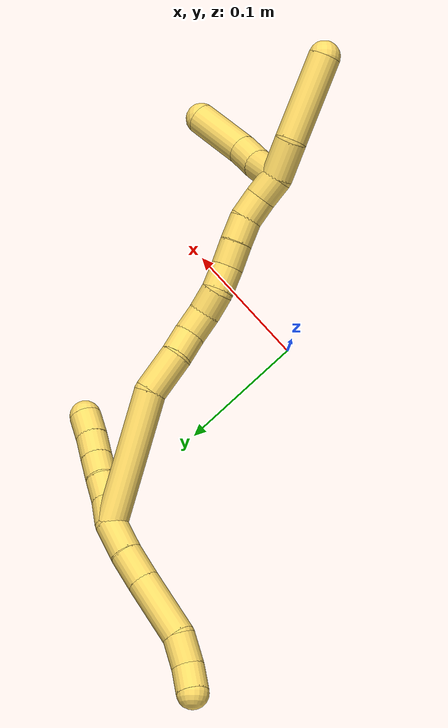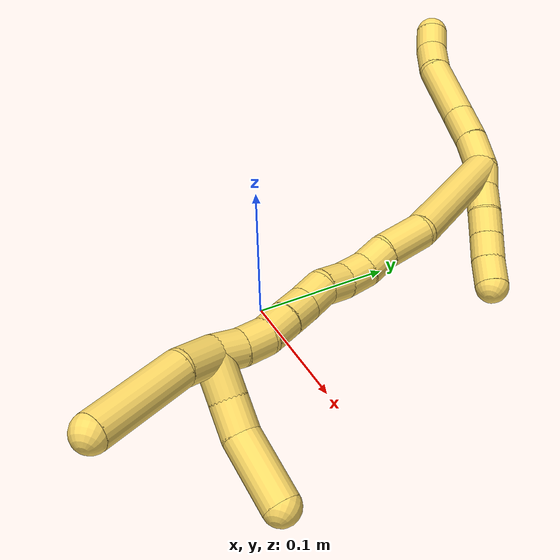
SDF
<sdf version="1.7">
 <world name="default">
  <model name="5">
   <static>0</static>
   <link name="5">
    <collision name="collision-cylinder-e_1_2_8">
     <pose>0.000745 -0.006176 0.012211 0.468232 0.054392 0.012975</pose>
     <geometry><cylinder><radius>0.0125</radius><length>0.027409</length></cylinder></geometry>
     <surface>
      <friction><ode><mu>1.16</mu><mu2>1.16</mu2><slip1>0</slip1><slip2>0</slip2></ode></friction>
      <contact><ode><kp>1e+06</kp><kd>1</kd><max_vel>0</max_vel><min_depth>0.001</min_depth></ode></contact>
     </surface>
    </collision>
    <visual name="visual-cylinder-e_1_2_8">
     <pose>0.000745 -0.006176 0.012211 0.468232 0.054392 0.012975</pose>
     <geometry><cylinder><radius>0.0125</radius><length>0.027409</length></cylinder></geometry>
     <material><ambient>1 0.858824 0.4 1</ambient></material>
    </visual>
    <collision name="collision-cylinder-e_2_8_9">
     <pose>0.001329 -0.019156 0.035711 0.542488 -0.012224 -0.0034</pose>
     <geometry><cylinder><radius>0.0125</radius><length>0.026363</length></cylinder></geometry>
     <surface>
      <friction><ode><mu>1.16</mu><mu2>1.16</mu2><slip1>0</slip1><slip2>0</slip2></ode></friction>
      <contact><ode><kp>1e+06</kp><kd>1</kd><max_vel>0</max_vel><min_depth>0.001</min_depth></ode></contact>
     </surface>
    </collision>
    <visual name="visual-cylinder-e_2_8_9">
     <pose>0.001329 -0.019156 0.035711 0.542488 -0.012224 -0.0034</pose>
     <geometry><cylinder><radius>0.0125</radius><length>0.026363</length></cylinder></geometry>
     <material><ambient>1 0.858824 0.4 1</ambient></material>
    </visual>
    <collision name="collision-cylinder-e_3_9_10">
     <pose>0.001737 -0.039712 0.068561 0.5677 0.022242 0.006489</pose>
     <geometry><cylinder><radius>0.0125</radius><length>0.05116</length></cylinder></geometry>
     <surface>
      <friction><ode><mu>1.16</mu><mu2>1.16</mu2><slip1>0</slip1><slip2>0</slip2></ode></friction>
      <contact><ode><kp>1e+06</kp><kd>1</kd><max_vel>0</max_vel><min_depth>0.001</min_depth></ode></contact>
     </surface>
    </collision>
    <visual name="visual-cylinder-e_3_9_10">
     <pose>0.001737 -0.039712 0.068561 0.5677 0.022242 0.006489</pose>
     <geometry><cylinder><radius>0.0125</radius><length>0.05116</length></cylinder></geometry>
     <material><ambient>1 0.858824 0.4 1</ambient></material>
    </visual>
    <collision name="collision-cylinder-e_4_10_11">
     <pose>0.0015 -0.056808 0.101817 0.278675 -0.066166 -0.009283</pose>
     <geometry><cylinder><radius>0.0125</radius><length>0.024378</length></cylinder></geometry>
     <surface>
      <friction><ode><mu>1.16</mu><mu2>1.16</mu2><slip1>0</slip1><slip2>0</slip2></ode></friction>
      <contact><ode><kp>1e+06</kp><kd>1</kd><max_vel>0</max_vel><min_depth>0.001</min_depth></ode></contact>
     </surface>
    </collision>
    <visual name="visual-cylinder-e_4_10_11">
     <pose>0.0015 -0.056808 0.101817 0.278675 -0.066166 -0.009283</pose>
     <geometry><cylinder><radius>0.0125</radius><length>0.024378</length></cylinder></geometry>
     <material><ambient>1 0.858824 0.4 1</ambient></material>
    </visual>
    <collision name="collision-cylinder-e_5_11_6">
     <pose>0.002114 -0.06224 0.123542 0.204971 0.137679 0.014182</pose>
     <geometry><cylinder><radius>0.0125</radius><length>0.02069</length></cylinder></geometry>
     <surface>
      <friction><ode><mu>1.16</mu><mu2>1.16</mu2><slip1>0</slip1><slip2>0</slip2></ode></friction>
      <contact><ode><kp>1e+06</kp><kd>1</kd><max_vel>0</max_vel><min_depth>0.001</min_depth></ode></contact>
     </surface>
    </collision>
    <visual name="visual-cylinder-e_5_11_6">
     <pose>0.002114 -0.06224 0.123542 0.204971 0.137679 0.014182</pose>
     <geometry><cylinder><radius>0.0125</radius><length>0.02069</length></cylinder></geometry>
     <material><ambient>1 0.858824 0.4 1</ambient></material>
    </visual>
    <collision name="collision-cylinder-e_1_2_12">
     <pose>-0.001535 0.001833 -0.00971 -2.95504 -0.154108 1.37998</pose>
     <geometry><cylinder><radius>0.0125</radius><length>0.02</length></cylinder></geometry>
     <surface>
      <friction><ode><mu>1.16</mu><mu2>1.16</mu2><slip1>0</slip1><slip2>0</slip2></ode></friction>
      <contact><ode><kp>1e+06</kp><kd>1</kd><max_vel>0</max_vel><min_depth>0.001</min_depth></ode></contact>
     </surface>
    </collision>
    <visual name="visual-cylinder-e_1_2_12">
     <pose>-0.001535 0.001833 -0.00971 -2.95504 -0.154108 1.37998</pose>
     <geometry><cylinder><radius>0.0125</radius><length>0.02</length></cylinder></geometry>
     <material><ambient>1 0.858824 0.4 1</ambient></material>
    </visual>
    <collision name="collision-cylinder-e_2_12_13">
     <pose>-0.004665 0.006578 -0.028853 -2.84213 -0.160145 0.977709</pose>
     <geometry><cylinder><radius>0.0125</radius><length>0.02</length></cylinder></geometry>
     <surface>
      <friction><ode><mu>1.16</mu><mu2>1.16</mu2><slip1>0</slip1><slip2>0</slip2></ode></friction>
      <contact><ode><kp>1e+06</kp><kd>1</kd><max_vel>0</max_vel><min_depth>0.001</min_depth></ode></contact>
     </surface>
    </collision>
    <visual name="visual-cylinder-e_2_12_13">
     <pose>-0.004665 0.006578 -0.028853 -2.84213 -0.160145 0.977709</pose>
     <geometry><cylinder><radius>0.0125</radius><length>0.02</length></cylinder></geometry>
     <material><ambient>1 0.858824 0.4 1</ambient></material>
    </visual>
    <collision name="collision-cylinder-e_3_13_14">
     <pose>-0.00905 0.01233 -0.047458 -2.8413 -0.282841 1.51011</pose>
     <geometry><cylinder><radius>0.0125</radius><length>0.02</length></cylinder></geometry>
     <surface>
      <friction><ode><mu>1.16</mu><mu2>1.16</mu2><slip1>0</slip1><slip2>0</slip2></ode></friction>
      <contact><ode><kp>1e+06</kp><kd>1</kd><max_vel>0</max_vel><min_depth>0.001</min_depth></ode></contact>
     </surface>
    </collision>
    <visual name="visual-cylinder-e_3_13_14">
     <pose>-0.00905 0.01233 -0.047458 -2.8413 -0.282841 1.51011</pose>
     <geometry><cylinder><radius>0.0125</radius><length>0.02</length></cylinder></geometry>
     <material><ambient>1 0.858824 0.4 1</ambient></material>
    </visual>
    <collision name="collision-cylinder-e_4_14_15">
     <pose>-0.013797 0.017745 -0.066094 -2.87603 -0.196836 1.27313</pose>
     <geometry><cylinder><radius>0.0125</radius><length>0.02</length></cylinder></geometry>
     <surface>
      <friction><ode><mu>1.16</mu><mu2>1.16</mu2><slip1>0</slip1><slip2>0</slip2></ode></friction>
      <contact><ode><kp>1e+06</kp><kd>1</kd><max_vel>0</max_vel><min_depth>0.001</min_depth></ode></contact>
     </surface>
    </collision>
    <visual name="visual-cylinder-e_4_14_15">
     <pose>-0.013797 0.017745 -0.066094 -2.87603 -0.196836 1.27313</pose>
     <geometry><cylinder><radius>0.0125</radius><length>0.02</length></cylinder></geometry>
     <material><ambient>1 0.858824 0.4 1</ambient></material>
    </visual>
    <collision name="collision-cylinder-e_5_15_5">
     <pose>-0.017198 0.023446 -0.084945 -2.82 -0.145045 0.842224</pose>
     <geometry><cylinder><radius>0.0125</radius><length>0.02</length></cylinder></geometry>
     <surface>
      <friction><ode><mu>1.16</mu><mu2>1.16</mu2><slip1>0</slip1><slip2>0</slip2></ode></friction>
      <contact><ode><kp>1e+06</kp><kd>1</kd><max_vel>0</max_vel><min_depth>0.001</min_depth></ode></contact>
     </surface>
    </collision>
    <visual name="visual-cylinder-e_5_15_5">
     <pose>-0.017198 0.023446 -0.084945 -2.82 -0.145045 0.842224</pose>
     <geometry><cylinder><radius>0.0125</radius><length>0.02</length></cylinder></geometry>
     <material><ambient>1 0.858824 0.4 1</ambient></material>
    </visual>
    <collision name="collision-cylinder-e_1_2_16">
     <pose>0.011464 -0.017448 -0.048232 2.79449 0.219899 1.12394</pose>
     <geometry><cylinder><radius>0.0125</radius><length>0.105113</length></cylinder></geometry>
     <surface>
      <friction><ode><mu>1.16</mu><mu2>1.16</mu2><slip1>0</slip1><slip2>0</slip2></ode></friction>
      <contact><ode><kp>1e+06</kp><kd>1</kd><max_vel>0</max_vel><min_depth>0.001</min_depth></ode></contact>
     </surface>
    </collision>
    <visual name="visual-cylinder-e_1_2_16">
     <pose>0.011464 -0.017448 -0.048232 2.79449 0.219899 1.12394</pose>
     <geometry><cylinder><radius>0.0125</radius><length>0.105113</length></cylinder></geometry>
     <material><ambient>1 0.858824 0.4 1</ambient></material>
    </visual>
    <collision name="collision-cylinder-e_2_16_17">
     <pose>0.023583 -0.04527 -0.110229 2.49573 0.037929 0.113235</pose>
     <geometry><cylinder><radius>0.0125</radius><length>0.034497</length></cylinder></geometry>
     <surface>
      <friction><ode><mu>1.16</mu><mu2>1.16</mu2><slip1>0</slip1><slip2>0</slip2></ode></friction>
      <contact><ode><kp>1e+06</kp><kd>1</kd><max_vel>0</max_vel><min_depth>0.001</min_depth></ode></contact>
     </surface>
    </collision>
    <visual name="visual-cylinder-e_2_16_17">
     <pose>0.023583 -0.04527 -0.110229 2.49573 0.037929 0.113235</pose>
     <geometry><cylinder><radius>0.0125</radius><length>0.034497</length></cylinder></geometry>
     <material><ambient>1 0.858824 0.4 1</ambient></material>
    </visual>
    <collision name="collision-cylinder-e_3_17_18">
     <pose>0.023029 -0.06054 -0.132707 2.62962 -0.120256 -0.452158</pose>
     <geometry><cylinder><radius>0.0125</radius><length>0.020136</length></cylinder></geometry>
     <surface>
      <friction><ode><mu>1.16</mu><mu2>1.16</mu2><slip1>0</slip1><slip2>0</slip2></ode></friction>
      <contact><ode><kp>1e+06</kp><kd>1</kd><max_vel>0</max_vel><min_depth>0.001</min_depth></ode></contact>
     </surface>
    </collision>
    <visual name="visual-cylinder-e_3_17_18">
     <pose>0.023029 -0.06054 -0.132707 2.62962 -0.120256 -0.452158</pose>
     <geometry><cylinder><radius>0.0125</radius><length>0.020136</length></cylinder></geometry>
     <material><ambient>1 0.858824 0.4 1</ambient></material>
    </visual>
    <collision name="collision-cylinder-e_4_18_19">
     <pose>0.022788 -0.071463 -0.14938 2.49361 0.096556 0.285781</pose>
     <geometry><cylinder><radius>0.0125</radius><length>0.020059</length></cylinder></geometry>
     <surface>
      <friction><ode><mu>1.16</mu><mu2>1.16</mu2><slip1>0</slip1><slip2>0</slip2></ode></friction>
      <contact><ode><kp>1e+06</kp><kd>1</kd><max_vel>0</max_vel><min_depth>0.001</min_depth></ode></contact>
     </surface>
    </collision>
    <visual name="visual-cylinder-e_4_18_19">
     <pose>0.022788 -0.071463 -0.14938 2.49361 0.096556 0.285781</pose>
     <geometry><cylinder><radius>0.0125</radius><length>0.020059</length></cylinder></geometry>
     <material><ambient>1 0.858824 0.4 1</ambient></material>
    </visual>
    <collision name="collision-cylinder-e_5_19_20">
     <pose>0.027092 -0.083314 -0.16476 2.476 0.34004 0.92197</pose>
     <geometry><cylinder><radius>0.0125</radius><length>0.020014</length></cylinder></geometry>
     <surface>
      <friction><ode><mu>1.16</mu><mu2>1.16</mu2><slip1>0</slip1><slip2>0</slip2></ode></friction>
      <contact><ode><kp>1e+06</kp><kd>1</kd><max_vel>0</max_vel><min_depth>0.001</min_depth></ode></contact>
     </surface>
    </collision>
    <visual name="visual-cylinder-e_5_19_20">
     <pose>0.027092 -0.083314 -0.16476 2.476 0.34004 0.92197</pose>
     <geometry><cylinder><radius>0.0125</radius><length>0.020014</length></cylinder></geometry>
     <material><ambient>1 0.858824 0.4 1</ambient></material>
    </visual>
    <collision name="collision-cylinder-e_6_20_21">
     <pose>0.031364 -0.09319 -0.181327 2.72475 0.093123 0.433702</pose>
     <geometry><cylinder><radius>0.0125</radius><length>0.020095</length></cylinder></geometry>
     <surface>
      <friction><ode><mu>1.16</mu><mu2>1.16</mu2><slip1>0</slip1><slip2>0</slip2></ode></friction>
      <contact><ode><kp>1e+06</kp><kd>1</kd><max_vel>0</max_vel><min_depth>0.001</min_depth></ode></contact>
     </surface>
    </collision>
    <visual name="visual-cylinder-e_6_20_21">
     <pose>0.031364 -0.09319 -0.181327 2.72475 0.093123 0.433702</pose>
     <geometry><cylinder><radius>0.0125</radius><length>0.020095</length></cylinder></geometry>
     <material><ambient>1 0.858824 0.4 1</ambient></material>
    </visual>
    <collision name="collision-cylinder-e_7_21_22">
     <pose>0.034448 -0.101179 -0.199429 2.72719 0.216319 0.953552</pose>
     <geometry><cylinder><radius>0.0125</radius><length>0.020031</length></cylinder></geometry>
     <surface>
      <friction><ode><mu>1.16</mu><mu2>1.16</mu2><slip1>0</slip1><slip2>0</slip2></ode></friction>
      <contact><ode><kp>1e+06</kp><kd>1</kd><max_vel>0</max_vel><min_depth>0.001</min_depth></ode></contact>
     </surface>
    </collision>
    <visual name="visual-cylinder-e_7_21_22">
     <pose>0.034448 -0.101179 -0.199429 2.72719 0.216319 0.953552</pose>
     <geometry><cylinder><radius>0.0125</radius><length>0.020031</length></cylinder></geometry>
     <material><ambient>1 0.858824 0.4 1</ambient></material>
    </visual>
    <collision name="collision-cylinder-e_8_22_23">
     <pose>0.038159 -0.109248 -0.217378 2.71108 0.156454 0.688481</pose>
     <geometry><cylinder><radius>0.0125</radius><length>0.020041</length></cylinder></geometry>
     <surface>
      <friction><ode><mu>1.16</mu><mu2>1.16</mu2><slip1>0</slip1><slip2>0</slip2></ode></friction>
      <contact><ode><kp>1e+06</kp><kd>1</kd><max_vel>0</max_vel><min_depth>0.001</min_depth></ode></contact>
     </surface>
    </collision>
    <visual name="visual-cylinder-e_8_22_23">
     <pose>0.038159 -0.109248 -0.217378 2.71108 0.156454 0.688481</pose>
     <geometry><cylinder><radius>0.0125</radius><length>0.020041</length></cylinder></geometry>
     <material><ambient>1 0.858824 0.4 1</ambient></material>
    </visual>
    <collision name="collision-cylinder-e_9_23_24">
     <pose>0.041338 -0.119562 -0.23407 2.46494 0.162392 0.454554</pose>
     <geometry><cylinder><radius>0.0125</radius><length>0.020009</length></cylinder></geometry>
     <surface>
      <friction><ode><mu>1.16</mu><mu2>1.16</mu2><slip1>0</slip1><slip2>0</slip2></ode></friction>
      <contact><ode><kp>1e+06</kp><kd>1</kd><max_vel>0</max_vel><min_depth>0.001</min_depth></ode></contact>
     </surface>
    </collision>
    <visual name="visual-cylinder-e_9_23_24">
     <pose>0.041338 -0.119562 -0.23407 2.46494 0.162392 0.454554</pose>
     <geometry><cylinder><radius>0.0125</radius><length>0.020009</length></cylinder></geometry>
     <material><ambient>1 0.858824 0.4 1</ambient></material>
    </visual>
    <collision name="collision-cylinder-e_10_24_1">
     <pose>0.045872 -0.132602 -0.24844 2.34247 0.295831 0.678438</pose>
     <geometry><cylinder><radius>0.0125</radius><length>0.020005</length></cylinder></geometry>
     <surface>
      <friction><ode><mu>1.16</mu><mu2>1.16</mu2><slip1>0</slip1><slip2>0</slip2></ode></friction>
      <contact><ode><kp>1e+06</kp><kd>1</kd><max_vel>0</max_vel><min_depth>0.001</min_depth></ode></contact>
     </surface>
    </collision>
    <visual name="visual-cylinder-e_10_24_1">
     <pose>0.045872 -0.132602 -0.24844 2.34247 0.295831 0.678438</pose>
     <geometry><cylinder><radius>0.0125</radius><length>0.020005</length></cylinder></geometry>
     <material><ambient>1 0.858824 0.4 1</ambient></material>
    </visual>
    <collision name="collision-cylinder-e_1_1_25">
     <pose>0.055446 -0.14627 -0.266837 2.61538 0.456421 1.42317</pose>
     <geometry><cylinder><radius>0.0125</radius><length>0.030212</length></cylinder></geometry>
     <surface>
      <friction><ode><mu>1.16</mu><mu2>1.16</mu2><slip1>0</slip1><slip2>0</slip2></ode></friction>
      <contact><ode><kp>1e+06</kp><kd>1</kd><max_vel>0</max_vel><min_depth>0.001</min_depth></ode></contact>
     </surface>
    </collision>
    <visual name="visual-cylinder-e_1_1_25">
     <pose>0.055446 -0.14627 -0.266837 2.61538 0.456421 1.42317</pose>
     <geometry><cylinder><radius>0.0125</radius><length>0.030212</length></cylinder></geometry>
     <material><ambient>1 0.858824 0.4 1</ambient></material>
    </visual>
    <collision name="collision-cylinder-e_2_25_4">
     <pose>0.069728 -0.167872 -0.309232 2.69221 0.220282 0.901318</pose>
     <geometry><cylinder><radius>0.0125</radius><length>0.069788</length></cylinder></geometry>
     <surface>
      <friction><ode><mu>1.16</mu><mu2>1.16</mu2><slip1>0</slip1><slip2>0</slip2></ode></friction>
      <contact><ode><kp>1e+06</kp><kd>1</kd><max_vel>0</max_vel><min_depth>0.001</min_depth></ode></contact>
     </surface>
    </collision>
    <visual name="visual-cylinder-e_2_25_4">
     <pose>0.069728 -0.167872 -0.309232 2.69221 0.220282 0.901318</pose>
     <geometry><cylinder><radius>0.0125</radius><length>0.069788</length></cylinder></geometry>
     <material><ambient>1 0.858824 0.4 1</ambient></material>
    </visual>
    <collision name="collision-cylinder-e_1_1_26">
     <pose>0.041649 -0.131194 -0.264413 -2.41508 -0.520898 1.22291</pose>
     <geometry><cylinder><radius>0.0125</radius><length>0.028691</length></cylinder></geometry>
     <surface>
      <friction><ode><mu>1.16</mu><mu2>1.16</mu2><slip1>0</slip1><slip2>0</slip2></ode></friction>
      <contact><ode><kp>1e+06</kp><kd>1</kd><max_vel>0</max_vel><min_depth>0.001</min_depth></ode></contact>
     </surface>
    </collision>
    <visual name="visual-cylinder-e_1_1_26">
     <pose>0.041649 -0.131194 -0.264413 -2.41508 -0.520898 1.22291</pose>
     <geometry><cylinder><radius>0.0125</radius><length>0.028691</length></cylinder></geometry>
     <material><ambient>1 0.858824 0.4 1</ambient></material>
    </visual>
    <collision name="collision-cylinder-e_2_26_27">
     <pose>0.03086 -0.116094 -0.282302 -2.4694 -0.321046 0.868005</pose>
     <geometry><cylinder><radius>0.0125</radius><length>0.023133</length></cylinder></geometry>
     <surface>
      <friction><ode><mu>1.16</mu><mu2>1.16</mu2><slip1>0</slip1><slip2>0</slip2></ode></friction>
      <contact><ode><kp>1e+06</kp><kd>1</kd><max_vel>0</max_vel><min_depth>0.001</min_depth></ode></contact>
     </surface>
    </collision>
    <visual name="visual-cylinder-e_2_26_27">
     <pose>0.03086 -0.116094 -0.282302 -2.4694 -0.321046 0.868005</pose>
     <geometry><cylinder><radius>0.0125</radius><length>0.023133</length></cylinder></geometry>
     <material><ambient>1 0.858824 0.4 1</ambient></material>
    </visual>
    <collision name="collision-cylinder-e_3_27_3">
     <pose>0.024142 -0.092114 -0.307529 -2.34121 -0.127698 0.300013</pose>
     <geometry><cylinder><radius>0.0125</radius><length>0.048176</length></cylinder></geometry>
     <surface>
      <friction><ode><mu>1.16</mu><mu2>1.16</mu2><slip1>0</slip1><slip2>0</slip2></ode></friction>
      <contact><ode><kp>1e+06</kp><kd>1</kd><max_vel>0</max_vel><min_depth>0.001</min_depth></ode></contact>
     </surface>
    </collision>
    <visual name="visual-cylinder-e_3_27_3">
     <pose>0.024142 -0.092114 -0.307529 -2.34121 -0.127698 0.300013</pose>
     <geometry><cylinder><radius>0.0125</radius><length>0.048176</length></cylinder></geometry>
     <material><ambient>1 0.858824 0.4 1</ambient></material>
    </visual>
    <collision name="collision-sphere-3">
     <pose>0.021074 -0.074969 -0.324168 0 -0 0</pose>
     <geometry><sphere><radius>0.0125</radius></sphere></geometry>
     <surface>
      <friction><ode><mu>1.16</mu><mu2>1.16</mu2><slip1>0</slip1><slip2>0</slip2></ode></friction>
      <contact><ode><kp>1e+06</kp><kd>1</kd><max_vel>0</max_vel><min_depth>0.001</min_depth></ode></contact>
     </surface>
    </collision>
    <visual name="visual-sphere-3">
     <pose>0.021074 -0.074969 -0.324168 0 -0 0</pose>
     <geometry><sphere><radius>0.0125</radius></sphere></geometry>
     <material><ambient>1 0.858824 0.4 1</ambient></material>
    </visual>
    <collision name="collision-sphere-27">
     <pose>0.02721 -0.10926 -0.290889 0 -0 0</pose>
     <geometry><sphere><radius>0.0125</radius></sphere></geometry>
     <surface>
      <friction><ode><mu>1.16</mu><mu2>1.16</mu2><slip1>0</slip1><slip2>0</slip2></ode></friction>
      <contact><ode><kp>1e+06</kp><kd>1</kd><max_vel>0</max_vel><min_depth>0.001</min_depth></ode></contact>
     </surface>
    </collision>
    <visual name="visual-sphere-27">
     <pose>0.02721 -0.10926 -0.290889 0 -0 0</pose>
     <geometry><sphere><radius>0.0125</radius></sphere></geometry>
     <material><ambient>1 0.858824 0.4 1</ambient></material>
    </visual>
    <collision name="collision-sphere-26">
     <pose>0.03451 -0.122929 -0.273714 0 -0 0</pose>
     <geometry><sphere><radius>0.0125</radius></sphere></geometry>
     <surface>
      <friction><ode><mu>1.16</mu><mu2>1.16</mu2><slip1>0</slip1><slip2>0</slip2></ode></friction>
      <contact><ode><kp>1e+06</kp><kd>1</kd><max_vel>0</max_vel><min_depth>0.001</min_depth></ode></contact>
     </surface>
    </collision>
    <visual name="visual-sphere-26">
     <pose>0.03451 -0.122929 -0.273714 0 -0 0</pose>
     <geometry><sphere><radius>0.0125</radius></sphere></geometry>
     <material><ambient>1 0.858824 0.4 1</ambient></material>
    </visual>
    <collision name="collision-sphere-4">
     <pose>0.077352 -0.182664 -0.339903 0 -0 0</pose>
     <geometry><sphere><radius>0.0125</radius></sphere></geometry>
     <surface>
      <friction><ode><mu>1.16</mu><mu2>1.16</mu2><slip1>0</slip1><slip2>0</slip2></ode></friction>
      <contact><ode><kp>1e+06</kp><kd>1</kd><max_vel>0</max_vel><min_depth>0.001</min_depth></ode></contact>
     </surface>
    </collision>
    <visual name="visual-sphere-4">
     <pose>0.077352 -0.182664 -0.339903 0 -0 0</pose>
     <geometry><sphere><radius>0.0125</radius></sphere></geometry>
     <material><ambient>1 0.858824 0.4 1</ambient></material>
    </visual>
    <collision name="collision-sphere-25">
     <pose>0.062103 -0.15308 -0.278562 0 -0 0</pose>
     <geometry><sphere><radius>0.0125</radius></sphere></geometry>
     <surface>
      <friction><ode><mu>1.16</mu><mu2>1.16</mu2><slip1>0</slip1><slip2>0</slip2></ode></friction>
      <contact><ode><kp>1e+06</kp><kd>1</kd><max_vel>0</max_vel><min_depth>0.001</min_depth></ode></contact>
     </surface>
    </collision>
    <visual name="visual-sphere-25">
     <pose>0.062103 -0.15308 -0.278562 0 -0 0</pose>
     <geometry><sphere><radius>0.0125</radius></sphere></geometry>
     <material><ambient>1 0.858824 0.4 1</ambient></material>
    </visual>
    <collision name="collision-sphere-1">
     <pose>0.048788 -0.139459 -0.255112 0 -0 0</pose>
     <geometry><sphere><radius>0.0125</radius></sphere></geometry>
     <surface>
      <friction><ode><mu>1.16</mu><mu2>1.16</mu2><slip1>0</slip1><slip2>0</slip2></ode></friction>
      <contact><ode><kp>1e+06</kp><kd>1</kd><max_vel>0</max_vel><min_depth>0.001</min_depth></ode></contact>
     </surface>
    </collision>
    <visual name="visual-sphere-1">
     <pose>0.048788 -0.139459 -0.255112 0 -0 0</pose>
     <geometry><sphere><radius>0.0125</radius></sphere></geometry>
     <material><ambient>1 0.858824 0.4 1</ambient></material>
    </visual>
    <collision name="collision-sphere-24">
     <pose>0.042956 -0.125744 -0.241768 0 -0 0</pose>
     <geometry><sphere><radius>0.0125</radius></sphere></geometry>
     <surface>
      <friction><ode><mu>1.16</mu><mu2>1.16</mu2><slip1>0</slip1><slip2>0</slip2></ode></friction>
      <contact><ode><kp>1e+06</kp><kd>1</kd><max_vel>0</max_vel><min_depth>0.001</min_depth></ode></contact>
     </surface>
    </collision>
    <visual name="visual-sphere-24">
     <pose>0.042956 -0.125744 -0.241768 0 -0 0</pose>
     <geometry><sphere><radius>0.0125</radius></sphere></geometry>
     <material><ambient>1 0.858824 0.4 1</ambient></material>
    </visual>
    <collision name="collision-sphere-23">
     <pose>0.039721 -0.113379 -0.226373 0 -0 0</pose>
     <geometry><sphere><radius>0.0125</radius></sphere></geometry>
     <surface>
      <friction><ode><mu>1.16</mu><mu2>1.16</mu2><slip1>0</slip1><slip2>0</slip2></ode></friction>
      <contact><ode><kp>1e+06</kp><kd>1</kd><max_vel>0</max_vel><min_depth>0.001</min_depth></ode></contact>
     </surface>
    </collision>
    <visual name="visual-sphere-23">
     <pose>0.039721 -0.113379 -0.226373 0 -0 0</pose>
     <geometry><sphere><radius>0.0125</radius></sphere></geometry>
     <material><ambient>1 0.858824 0.4 1</ambient></material>
    </visual>
    <collision name="collision-sphere-22">
     <pose>0.036598 -0.105118 -0.208383 0 -0 0</pose>
     <geometry><sphere><radius>0.0125</radius></sphere></geometry>
     <surface>
      <friction><ode><mu>1.16</mu><mu2>1.16</mu2><slip1>0</slip1><slip2>0</slip2></ode></friction>
      <contact><ode><kp>1e+06</kp><kd>1</kd><max_vel>0</max_vel><min_depth>0.001</min_depth></ode></contact>
     </surface>
    </collision>
    <visual name="visual-sphere-22">
     <pose>0.036598 -0.105118 -0.208383 0 -0 0</pose>
     <geometry><sphere><radius>0.0125</radius></sphere></geometry>
     <material><ambient>1 0.858824 0.4 1</ambient></material>
    </visual>
    <collision name="collision-sphere-21">
     <pose>0.032299 -0.09724 -0.190475 0 -0 0</pose>
     <geometry><sphere><radius>0.0125</radius></sphere></geometry>
     <surface>
      <friction><ode><mu>1.16</mu><mu2>1.16</mu2><slip1>0</slip1><slip2>0</slip2></ode></friction>
      <contact><ode><kp>1e+06</kp><kd>1</kd><max_vel>0</max_vel><min_depth>0.001</min_depth></ode></contact>
     </surface>
    </collision>
    <visual name="visual-sphere-21">
     <pose>0.032299 -0.09724 -0.190475 0 -0 0</pose>
     <geometry><sphere><radius>0.0125</radius></sphere></geometry>
     <material><ambient>1 0.858824 0.4 1</ambient></material>
    </visual>
    <collision name="collision-sphere-6">
     <pose>0.003533 -0.064325 0.133575 0 -0 0</pose>
     <geometry><sphere><radius>0.0125</radius></sphere></geometry>
     <surface>
      <friction><ode><mu>1.16</mu><mu2>1.16</mu2><slip1>0</slip1><slip2>0</slip2></ode></friction>
      <contact><ode><kp>1e+06</kp><kd>1</kd><max_vel>0</max_vel><min_depth>0.001</min_depth></ode></contact>
     </surface>
    </collision>
    <visual name="visual-sphere-6">
     <pose>0.003533 -0.064325 0.133575 0 -0 0</pose>
     <geometry><sphere><radius>0.0125</radius></sphere></geometry>
     <material><ambient>1 0.858824 0.4 1</ambient></material>
    </visual>
    <collision name="collision-sphere-11">
     <pose>0.000694 -0.060154 0.11351 0 -0 0</pose>
     <geometry><sphere><radius>0.0125</radius></sphere></geometry>
     <surface>
      <friction><ode><mu>1.16</mu><mu2>1.16</mu2><slip1>0</slip1><slip2>0</slip2></ode></friction>
      <contact><ode><kp>1e+06</kp><kd>1</kd><max_vel>0</max_vel><min_depth>0.001</min_depth></ode></contact>
     </surface>
    </collision>
    <visual name="visual-sphere-11">
     <pose>0.000694 -0.060154 0.11351 0 -0 0</pose>
     <geometry><sphere><radius>0.0125</radius></sphere></geometry>
     <material><ambient>1 0.858824 0.4 1</ambient></material>
    </visual>
    <collision name="collision-sphere-10">
     <pose>0.002306 -0.053463 0.090123 0 -0 0</pose>
     <geometry><sphere><radius>0.0125</radius></sphere></geometry>
     <surface>
      <friction><ode><mu>1.16</mu><mu2>1.16</mu2><slip1>0</slip1><slip2>0</slip2></ode></friction>
      <contact><ode><kp>1e+06</kp><kd>1</kd><max_vel>0</max_vel><min_depth>0.001</min_depth></ode></contact>
     </surface>
    </collision>
    <visual name="visual-sphere-10">
     <pose>0.002306 -0.053463 0.090123 0 -0 0</pose>
     <geometry><sphere><radius>0.0125</radius></sphere></geometry>
     <material><ambient>1 0.858824 0.4 1</ambient></material>
    </visual>
    <collision name="collision-sphere-9">
     <pose>0.001168 -0.025961 0.046999 0 -0 0</pose>
     <geometry><sphere><radius>0.0125</radius></sphere></geometry>
     <surface>
      <friction><ode><mu>1.16</mu><mu2>1.16</mu2><slip1>0</slip1><slip2>0</slip2></ode></friction>
      <contact><ode><kp>1e+06</kp><kd>1</kd><max_vel>0</max_vel><min_depth>0.001</min_depth></ode></contact>
     </surface>
    </collision>
    <visual name="visual-sphere-9">
     <pose>0.001168 -0.025961 0.046999 0 -0 0</pose>
     <geometry><sphere><radius>0.0125</radius></sphere></geometry>
     <material><ambient>1 0.858824 0.4 1</ambient></material>
    </visual>
    <collision name="collision-sphere-2">
     <geometry><sphere><radius>0.0125</radius></sphere></geometry>
     <surface>
      <friction><ode><mu>1.16</mu><mu2>1.16</mu2><slip1>0</slip1><slip2>0</slip2></ode></friction>
      <contact><ode><kp>1e+06</kp><kd>1</kd><max_vel>0</max_vel><min_depth>0.001</min_depth></ode></contact>
     </surface>
    </collision>
    <visual name="visual-sphere-2">
     <geometry><sphere><radius>0.0125</radius></sphere></geometry>
     <material><ambient>1 0.858824 0.4 1</ambient></material>
    </visual>
    <collision name="collision-sphere-19">
     <pose>0.023755 -0.077488 -0.15734 0 -0 0</pose>
     <geometry><sphere><radius>0.0125</radius></sphere></geometry>
     <surface>
      <friction><ode><mu>1.16</mu><mu2>1.16</mu2><slip1>0</slip1><slip2>0</slip2></ode></friction>
      <contact><ode><kp>1e+06</kp><kd>1</kd><max_vel>0</max_vel><min_depth>0.001</min_depth></ode></contact>
     </surface>
    </collision>
    <visual name="visual-sphere-19">
     <pose>0.023755 -0.077488 -0.15734 0 -0 0</pose>
     <geometry><sphere><radius>0.0125</radius></sphere></geometry>
     <material><ambient>1 0.858824 0.4 1</ambient></material>
    </visual>
    <collision name="collision-sphere-8">
     <pose>0.00149 -0.012352 0.024423 0 -0 0</pose>
     <geometry><sphere><radius>0.0125</radius></sphere></geometry>
     <surface>
      <friction><ode><mu>1.16</mu><mu2>1.16</mu2><slip1>0</slip1><slip2>0</slip2></ode></friction>
      <contact><ode><kp>1e+06</kp><kd>1</kd><max_vel>0</max_vel><min_depth>0.001</min_depth></ode></contact>
     </surface>
    </collision>
    <visual name="visual-sphere-8">
     <pose>0.00149 -0.012352 0.024423 0 -0 0</pose>
     <geometry><sphere><radius>0.0125</radius></sphere></geometry>
     <material><ambient>1 0.858824 0.4 1</ambient></material>
    </visual>
    <collision name="collision-sphere-12">
     <pose>-0.00307 0.003665 -0.01942 0 -0 0</pose>
     <geometry><sphere><radius>0.0125</radius></sphere></geometry>
     <surface>
      <friction><ode><mu>1.16</mu><mu2>1.16</mu2><slip1>0</slip1><slip2>0</slip2></ode></friction>
      <contact><ode><kp>1e+06</kp><kd>1</kd><max_vel>0</max_vel><min_depth>0.001</min_depth></ode></contact>
     </surface>
    </collision>
    <visual name="visual-sphere-12">
     <pose>-0.00307 0.003665 -0.01942 0 -0 0</pose>
     <geometry><sphere><radius>0.0125</radius></sphere></geometry>
     <material><ambient>1 0.858824 0.4 1</ambient></material>
    </visual>
    <collision name="collision-sphere-13">
     <pose>-0.006259 0.00949 -0.038285 0 -0 0</pose>
     <geometry><sphere><radius>0.0125</radius></sphere></geometry>
     <surface>
      <friction><ode><mu>1.16</mu><mu2>1.16</mu2><slip1>0</slip1><slip2>0</slip2></ode></friction>
      <contact><ode><kp>1e+06</kp><kd>1</kd><max_vel>0</max_vel><min_depth>0.001</min_depth></ode></contact>
     </surface>
    </collision>
    <visual name="visual-sphere-13">
     <pose>-0.006259 0.00949 -0.038285 0 -0 0</pose>
     <geometry><sphere><radius>0.0125</radius></sphere></geometry>
     <material><ambient>1 0.858824 0.4 1</ambient></material>
    </visual>
    <collision name="collision-sphere-14">
     <pose>-0.011841 0.015171 -0.056631 0 -0 0</pose>
     <geometry><sphere><radius>0.0125</radius></sphere></geometry>
     <surface>
      <friction><ode><mu>1.16</mu><mu2>1.16</mu2><slip1>0</slip1><slip2>0</slip2></ode></friction>
      <contact><ode><kp>1e+06</kp><kd>1</kd><max_vel>0</max_vel><min_depth>0.001</min_depth></ode></contact>
     </surface>
    </collision>
    <visual name="visual-sphere-14">
     <pose>-0.011841 0.015171 -0.056631 0 -0 0</pose>
     <geometry><sphere><radius>0.0125</radius></sphere></geometry>
     <material><ambient>1 0.858824 0.4 1</ambient></material>
    </visual>
    <collision name="collision-sphere-15">
     <pose>-0.015752 0.020319 -0.075558 0 -0 0</pose>
     <geometry><sphere><radius>0.0125</radius></sphere></geometry>
     <surface>
      <friction><ode><mu>1.16</mu><mu2>1.16</mu2><slip1>0</slip1><slip2>0</slip2></ode></friction>
      <contact><ode><kp>1e+06</kp><kd>1</kd><max_vel>0</max_vel><min_depth>0.001</min_depth></ode></contact>
     </surface>
    </collision>
    <visual name="visual-sphere-15">
     <pose>-0.015752 0.020319 -0.075558 0 -0 0</pose>
     <geometry><sphere><radius>0.0125</radius></sphere></geometry>
     <material><ambient>1 0.858824 0.4 1</ambient></material>
    </visual>
    <collision name="collision-sphere-5">
     <pose>-0.018643 0.026574 -0.094333 0 -0 0</pose>
     <geometry><sphere><radius>0.0125</radius></sphere></geometry>
     <surface>
      <friction><ode><mu>1.16</mu><mu2>1.16</mu2><slip1>0</slip1><slip2>0</slip2></ode></friction>
      <contact><ode><kp>1e+06</kp><kd>1</kd><max_vel>0</max_vel><min_depth>0.001</min_depth></ode></contact>
     </surface>
    </collision>
    <visual name="visual-sphere-5">
     <pose>-0.018643 0.026574 -0.094333 0 -0 0</pose>
     <geometry><sphere><radius>0.0125</radius></sphere></geometry>
     <material><ambient>1 0.858824 0.4 1</ambient></material>
    </visual>
    <collision name="collision-sphere-16">
     <pose>0.022929 -0.034896 -0.096465 0 -0 0</pose>
     <geometry><sphere><radius>0.0125</radius></sphere></geometry>
     <surface>
      <friction><ode><mu>1.16</mu><mu2>1.16</mu2><slip1>0</slip1><slip2>0</slip2></ode></friction>
      <contact><ode><kp>1e+06</kp><kd>1</kd><max_vel>0</max_vel><min_depth>0.001</min_depth></ode></contact>
     </surface>
    </collision>
    <visual name="visual-sphere-16">
     <pose>0.022929 -0.034896 -0.096465 0 -0 0</pose>
     <geometry><sphere><radius>0.0125</radius></sphere></geometry>
     <material><ambient>1 0.858824 0.4 1</ambient></material>
    </visual>
    <collision name="collision-sphere-17">
     <pose>0.024237 -0.055644 -0.123993 0 -0 0</pose>
     <geometry><sphere><radius>0.0125</radius></sphere></geometry>
     <surface>
      <friction><ode><mu>1.16</mu><mu2>1.16</mu2><slip1>0</slip1><slip2>0</slip2></ode></friction>
      <contact><ode><kp>1e+06</kp><kd>1</kd><max_vel>0</max_vel><min_depth>0.001</min_depth></ode></contact>
     </surface>
    </collision>
    <visual name="visual-sphere-17">
     <pose>0.024237 -0.055644 -0.123993 0 -0 0</pose>
     <geometry><sphere><radius>0.0125</radius></sphere></geometry>
     <material><ambient>1 0.858824 0.4 1</ambient></material>
    </visual>
    <collision name="collision-sphere-18">
     <pose>0.021821 -0.065437 -0.141421 0 -0 0</pose>
     <geometry><sphere><radius>0.0125</radius></sphere></geometry>
     <surface>
      <friction><ode><mu>1.16</mu><mu2>1.16</mu2><slip1>0</slip1><slip2>0</slip2></ode></friction>
      <contact><ode><kp>1e+06</kp><kd>1</kd><max_vel>0</max_vel><min_depth>0.001</min_depth></ode></contact>
     </surface>
    </collision>
    <visual name="visual-sphere-18">
     <pose>0.021821 -0.065437 -0.141421 0 -0 0</pose>
     <geometry><sphere><radius>0.0125</radius></sphere></geometry>
     <material><ambient>1 0.858824 0.4 1</ambient></material>
    </visual>
    <collision name="collision-sphere-20">
     <pose>0.03043 -0.08914 -0.17218 0 -0 0</pose>
     <geometry><sphere><radius>0.0125</radius></sphere></geometry>
     <surface>
      <friction><ode><mu>1.16</mu><mu2>1.16</mu2><slip1>0</slip1><slip2>0</slip2></ode></friction>
      <contact><ode><kp>1e+06</kp><kd>1</kd><max_vel>0</max_vel><min_depth>0.001</min_depth></ode></contact>
     </surface>
    </collision>
    <visual name="visual-sphere-20">
     <pose>0.03043 -0.08914 -0.17218 0 -0 0</pose>
     <geometry><sphere><radius>0.0125</radius></sphere></geometry>
     <material><ambient>1 0.858824 0.4 1</ambient></material>
    </visual>
    <inertial>
     <pose>0.021632 -0.066682 -0.123975 0 -0 0</pose>
     <mass>0.75</mass>
     <inertia><ixx>0.000251</ixx><ixy>0</ixy><ixz>0</ixz><iyy>7.3e-05</iyy><iyz>0</iyz><izz>-2e-06</izz></inertia>
    </inertial>
   </link>
   <pose>-0.009311 0.194469 0.058799 -0.647359 -1.24983 -0.067838</pose>
  </model>
 </world>
</sdf>
